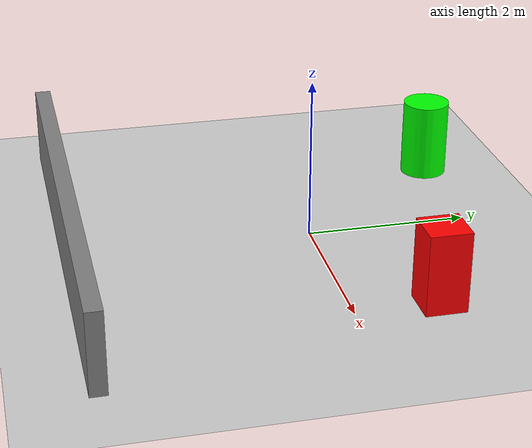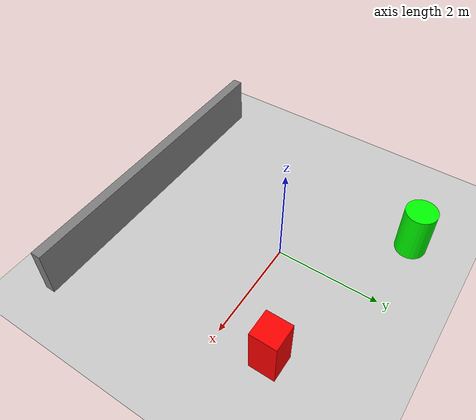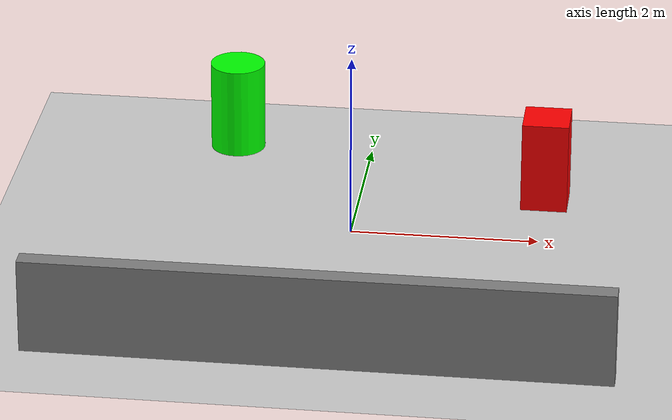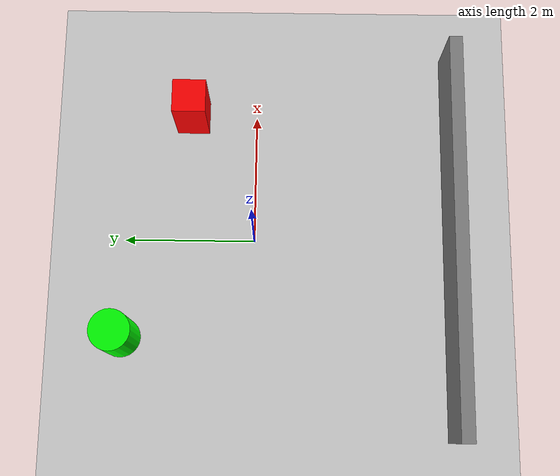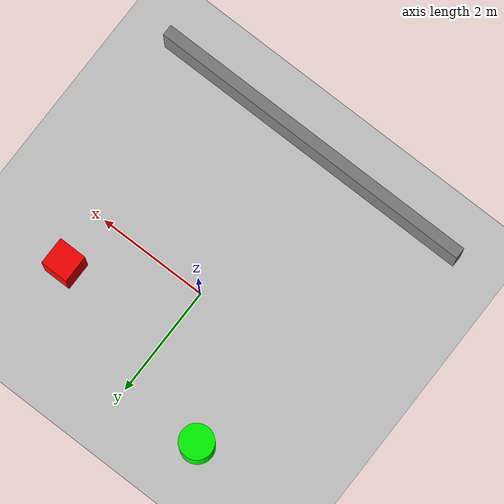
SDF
<?xml version="1.0" ?>
<sdf version="1.6">
  <world name="empty_world">
    <physics name="1ms" type="ignored">
      <max_step_size>0.001</max_step_size>
      <real_time_factor>1.0</real_time_factor>
    </physics>

    <plugin name="gazebo_ros_state" filename="libgazebo_ros_state.so"/>
    <plugin name="gazebo_ros_factory" filename="libgazebo_ros_factory.so"/>
    <plugin name="gazebo_ros_diff_drive" filename="libgazebo_ros_diff_drive.so"/>

    <!-- Ground Plane -->
    <include>
      <uri>model://ground_plane</uri>
    </include>

    <!-- Sun -->
    <include>
      <uri>model://sun</uri>
    </include>

    <!-- Add some obstacles for demonstration -->
    <model name="obstacle1">
      <pose>2.0 1.0 0.5 0 0 0</pose>
      <static>true</static>
      <link name="link">
        <collision name="collision">
          <geometry>
            <box>
              <size>0.5 0.5 1.0</size>
            </box>
          </geometry>
        </collision>
        <visual name="visual">
          <geometry>
            <box>
              <size>0.5 0.5 1.0</size>
            </box>
          </geometry>
          <material>
            <ambient>1 0 0 1</ambient>
            <diffuse>1 0 0 1</diffuse>
            <specular>0 0 0 1</specular>
          </material>
        </visual>
      </link>
    </model>

    <model name="obstacle2">
      <pose>-1.5 2.0 0.5 0 0 0</pose>
      <static>true</static>
      <link name="link">
        <collision name="collision">
          <geometry>
            <cylinder>
              <radius>0.3</radius>
              <length>1.0</length>
            </cylinder>
          </geometry>
        </collision>
        <visual name="visual">
          <geometry>
            <cylinder>
              <radius>0.3</radius>
              <length>1.0</length>
            </cylinder>
          </geometry>
          <material>
            <ambient>0 1 0 1</ambient>
            <diffuse>0 1 0 1</diffuse>
            <specular>0 0 0 1</specular>
          </material>
        </visual>
      </link>
    </model>

    <model name="wall">
      <pose>0.0 -3.0 0.5 0 0 0</pose>
      <static>true</static>
      <link name="link">
        <collision name="collision">
          <geometry>
            <box>
              <size>6.0 0.2 1.0</size>
            </box>
          </geometry>
        </collision>
        <visual name="visual">
          <geometry>
            <box>
              <size>6.0 0.2 1.0</size>
            </box>
          </geometry>
          <material>
            <ambient>0.5 0.5 0.5 1</ambient>
            <diffuse>0.5 0.5 0.5 1</diffuse>
            <specular>0 0 0 1</specular>
          </material>
        </visual>
      </link>
    </model>

  </world>
</sdf>
